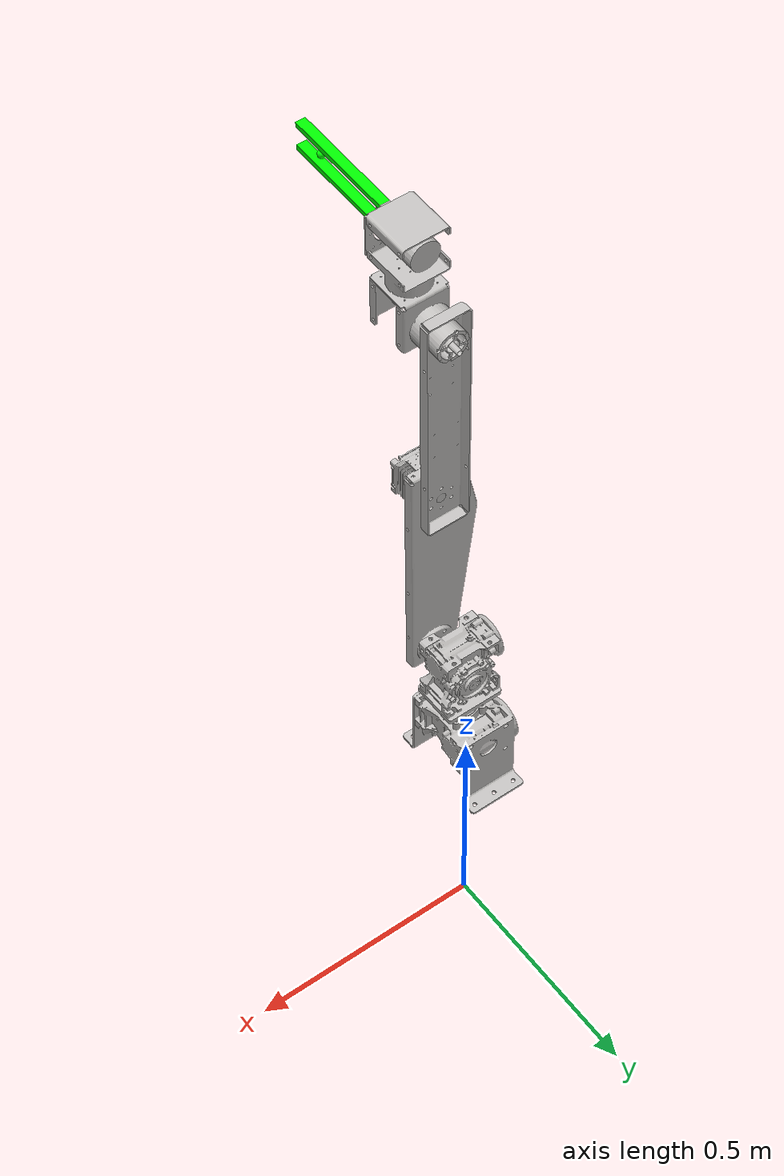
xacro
<?xml version="1.0"?>
<robot xmlns:xacro="http://www.ros.org/wiki/xacro" name="leaf_robot_description">
    <xacro:arg name="initial_positions_file" default="initial_positions.yaml" />

    <!-- Import leaf_robot_description urdf file -->
    <xacro:include filename="$(find leaf_robot_description)/urdf/leaf_robot.urdf" />

    <!-- Import control_xacro -->
    <xacro:include filename="leaf_robot_description.ros2_control.xacro" />

    <xacro:leaf_robot_description_ros2_control name="FakeSystem" initial_positions_file="$(arg initial_positions_file)"/>

</robot>

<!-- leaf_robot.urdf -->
<!-- Fixed URDF with proper base link and cleaner hierarchy -->

<robot name="leaf_robot_description">

<material name="gray">
  <color rgba="0.7451 0.73725 0.72941 1"/>
</material>

<material name="green">
  <color rgba="0 1 0 1"/>
</material>

  <!-- ================= BASE FOOTPRINT ================= -->
  <link name="base_footprint"/>

  <!-- ================= BASE LINK ================= -->
  <link name="base_link">
    <inertial>
      <origin xyz="-0.064016 -0.080031 0.11562" rpy="0 0 0"/>
      <mass value="1.1031"/>
      <inertia
        ixx="0.0023261"
        ixy="0.0001122"
        ixz="-1.4598E-06"
        iyy="0.0023583"
        iyz="5.3023E-06"
        izz="0.0024963"/>
    </inertial>

    <visual>
      <origin xyz="0 0 0" rpy="0 0 0"/>
      <geometry>
        <mesh filename="package://leaf_robot_description/meshes/BASE.STL"/>
      </geometry>
      <material name="gray">
        <color rgba="0.7451 0.73725 0.72941 1"/>
      </material>
    </visual>

    <collision>
      <origin xyz="0 0 0" rpy="0 0 0"/>
      <geometry>
        <mesh filename="package://leaf_robot_description/meshes/BASE.STL"/>
      </geometry>
    </collision>
  </link>

  <!-- FIXED ROOT JOINT -->
  <joint name="base_fixed_joint" type="fixed">
    <parent link="base_footprint"/>
    <child link="base_link"/>
    <origin xyz="0 0 0.6" rpy="0 0 3.14"/>
  </joint>

  <!-- ================= LINK J1 ================= -->
  <link name="J_1">
    <inertial>
      <origin xyz="0.0030632 -0.00037054 0.19009" rpy="0 0 0"/>
      <mass value="1.089"/>
      <inertia
        ixx="0.0018485"
        ixy="-1.4598E-06"
        ixz="-0.00011196"
        iyy="0.0024341"
        iyz="-5.3023E-06"
        izz="0.001692"/>
    </inertial>

    <visual>
      <origin xyz="0 0 0" rpy="0 0 0"/>
      <geometry>
        <mesh filename="package://leaf_robot_description/meshes/J_1.STL"/>
      </geometry>
      <material name="gray"/>
    </visual>

    <collision>
      <origin xyz="0 0 0" rpy="0 0 0"/>
      <geometry>
        <mesh filename="package://leaf_robot_description/meshes/J_1.STL"/>
      </geometry>
    </collision>
  </link>

  <joint name="ROT_1" type="revolute">
    <origin xyz="-0.067 -0.065 0.082" rpy="0 0 0"/>
    <parent link="base_link"/>
    <child link="J_1"/>
    <axis xyz="0 0 1"/>
    <limit lower="-3.14" upper="3.14" effort="10" velocity="1.0"/>
  </joint>

  <!-- ================= LINK J2 ================= -->
  <link name="J_2">
    <inertial>
      <origin xyz="-0.25856 0.13854 0.13905" rpy="0 0 0"/>
      <mass value="0.721"/>
      <inertia
        ixx="0.0019755"
        ixy="0.0020808"
        ixz="-3.9585E-06"
        iyy="0.004707"
        iyz="1.0786E-06"
        izz="0.00632"/>
    </inertial>

    <visual>
      <origin xyz="0 0 0" rpy="0 0 0"/>
      <geometry>
        <mesh filename="package://leaf_robot_description/meshes/J_2.STL"/>
      </geometry>
      <material name="gray"/>
    </visual>

    <collision>
      <origin xyz="0 0 0" rpy="0 0 0"/>
      <geometry>
        <mesh filename="package://leaf_robot_description/meshes/J_2.STL"/>
      </geometry>
    </collision>
  </link>

  <joint name="PITCH_1" type="revolute">
    <origin xyz="0 -0.046 0.194" rpy="1.5708 1.0472 -3.1416"/>
    <parent link="J_1"/>
    <child link="J_2"/>
    <axis xyz="0 0 1"/>
    <limit lower="-1.57" upper="1.57" effort="10" velocity="1.0"/>
  </joint>

  <!-- ================= LINK J3 ================= -->
  <link name="J_3">
    <inertial>
      <origin xyz="0.15412 -0.0055136 0.088982" rpy="0 0 0"/>
      <mass value="0.21768"/>
      <inertia
        ixx="0.0012955"
        ixy="7.1563E-06"
        ixz="-0.0018514"
        iyy="0.0047078"
        iyz="4.1274E-06"
        izz="0.0034333"/>
    </inertial>

    <visual>
      <origin xyz="0 0 0" rpy="0 0 0"/>
      <geometry>
        <mesh filename="package://leaf_robot_description/meshes/J_3.STL"/>
      </geometry>
      <material name="gray"/>
    </visual>

    <collision>
      <origin xyz="0 0 0" rpy="0 0 0"/>
      <geometry>
        <mesh filename="package://leaf_robot_description/meshes/J_3.STL"/>
      </geometry>
    </collision>
  </link>

  <joint name="PITCH_2" type="revolute">
    <origin xyz="-0.37152 0.2145 0.107" rpy="1.5708 0 -3.1416"/>
    <parent link="J_2"/>
    <child link="J_3"/>
    <axis xyz="0 1 0"/>
    <limit lower="-3.14" upper="3.14" effort="10" velocity="1.0"/>
  </joint>

  <!-- ================= LINK J4 ================= -->
  <link name="J_4">
    <inertial>
      <origin xyz="0.0015946 0.0041989 -0.028525" rpy="0 0 0"/>
      <mass value="0.2071"/>
      <inertia
        ixx="0.00034764"
        ixy="1.6788E-07"
        ixz="-4.447E-08"
        iyy="0.00034785"
        iyz="-2.7415E-07"
        izz="0.00030028"/>
    </inertial>

    <visual>
      <origin xyz="0 0 0" rpy="0 0 0"/>
      <geometry>
        <mesh filename="package://leaf_robot_description/meshes/J_4.STL"/>
      </geometry>
      <material name="gray"/>
    </visual>

    <collision>
      <origin xyz="0 0 0" rpy="0 0 0"/>
      <geometry>
        <mesh filename="package://leaf_robot_description/meshes/J_4.STL"/>
      </geometry>
    </collision>
  </link>

  <joint name="PITCH_3" type="revolute">
    <origin xyz="0.3542 0.012 0.2045" rpy="1.5708 0.68579 0"/>
    <parent link="J_3"/>
    <child link="J_4"/>
    <axis xyz="0 0 1"/>
    <limit lower="-3.14" upper="3.14" effort="10" velocity="1.0"/>
  </joint>

  <!-- ================= LINK J5 ================= -->
  <link name="J_5">
    <inertial>
      <origin xyz="-0.0015905 -0.0042271 -0.028525" rpy="0 0 0"/>
      <mass value="0.2071"/>
      <inertia
        ixx="0.00034764"
        ixy="1.6788E-07"
        ixz="1.2854E-07"
        iyy="0.00034785"
        iyz="1.8355E-07"
        izz="0.00030028"/>
    </inertial>

    <visual>
      <origin xyz="0 0 0" rpy="0 0 0"/>
      <geometry>
        <mesh filename="package://leaf_robot_description/meshes/J_5.STL"/>
      </geometry>
      <material name="gray"/>
    </visual>

    <collision>
      <origin xyz="0 0 0" rpy="0 0 0"/>
      <geometry>
        <mesh filename="package://leaf_robot_description/meshes/J_5.STL"/>
      </geometry>
    </collision>
  </link>

  <joint name="ROT_2" type="revolute">
    <origin xyz="0.023514 0.062204 -0.0725" rpy="-1.5708 -2.7802 2.7802"/>
    <parent link="J_4"/>
    <child link="J_5"/>
    <axis xyz="0 0 1"/>
    <limit lower="-3.14" upper="3.14" effort="10" velocity="1.0"/>
  </joint>

  <!-- ================= LINK J6 ================= -->
  <joint name="ROT_3" type="revolute">
    <parent link="J_5"/>
    <child link="J_6"/>
    <origin xyz="-0.0015905 -0.0042271 -0.078525" rpy="0 0 -0.353599"/>
    <axis xyz="0 1 0"/>
    <limit effort="50" velocity="1.0" lower="-6.28" upper="6.28"/>
  </joint>

  <link name="J_6">
    <visual>
      <geometry><cylinder length="0.1" radius="0.03"/></geometry>
      <origin xyz="0 0 0" rpy="-1.5708 0 0"/>
      <material name="gray"/>
    </visual>
    <collision>
      <geometry><box size="0.04 0.02 0.02"/></geometry>
      <origin xyz="0 0 0" rpy="-1.5708 0 0"/>
    </collision>
  </link>

  <!-- GRIPPER BASE -->

  <joint name="Gripper" type="fixed">
    <parent link="J_6"/>
    <child link="gripper_base_link"/>
    <origin xyz="0 -0.06 0" rpy="1.5708 0 0"/>
  </joint>

  <link name="gripper_base_link">
    <visual>
      <geometry>
        <box size="0.02 0.06 0.02"/>
      </geometry>
      <material name="gray"/>
    </visual>
  </link>

  <!-- LEFT FINGER -->

  <joint name="left_finger_joint" type="prismatic">
    <parent link="gripper_base_link"/>
    <child link="left_finger"/>
    <origin xyz="0 0.025 0"/>
    <axis xyz="0 -1 0"/>
    <limit lower="0.0" upper="0.02"
           effort="10" velocity="0.1"/>
  </joint>

  <link name="left_finger">
    <visual>
      <geometry>
        <box size="0.02 0.01 0.235"/>
      </geometry>
      <origin xyz="0 0 0.1175"/>
      <material name="green"/>
    </visual>
  </link>

    <!-- RIGHT FINGER -->

  <joint name="right_finger_joint" type="prismatic">
    <parent link="gripper_base_link"/>
    <child link="right_finger"/>
    <origin xyz="0 -0.025 0"/>
    <axis xyz="0 -1 0"/>
    <mimic joint="left_finger_joint" multiplier="-1.0"/>
    <limit lower="0.0" upper="0.02"
          effort="10" velocity="0.1"/>
  </joint>

  <link name="right_finger">
    <visual>
      <geometry>
        <box size="0.02 0.01 0.235"/>
      </geometry>
      <origin xyz="0 0 0.1175"/>
      <material name="green"/>
    </visual>

    <collision>
      <geometry>
        <box size="0.02 0.01 0.235"/>
      </geometry>
      <origin xyz="0 0 0.1175"/>
    </collision>
  </link>

  <!-- TCP -->

  <link name="link_tcp">
    <visual>
      <geometry>
        <sphere radius="0.008"/>
      </geometry>
      <material name="green"/>
    </visual>

    <collision>
      <geometry>
        <sphere radius="0.005"/>
      </geometry>
    </collision>
  </link>

  <joint name="tcp_joint" type="fixed">
    <parent link="gripper_base_link"/>
    <child link="link_tcp"/>
    <origin xyz="0 0 0.17625" rpy="0 0 0"/>
  </joint>
</robot>
